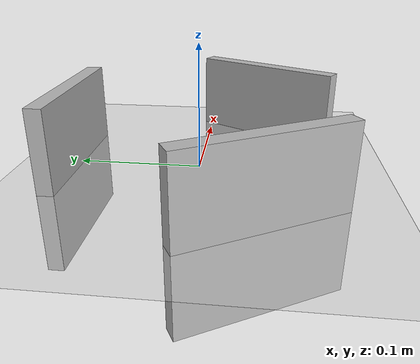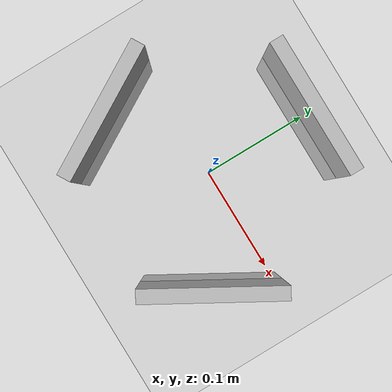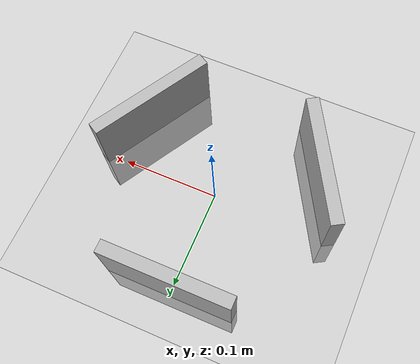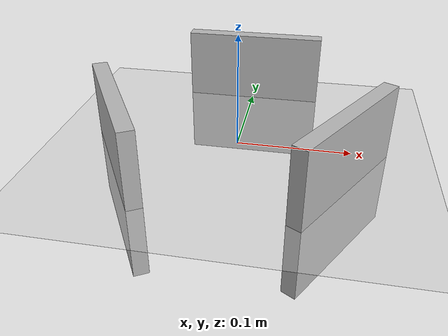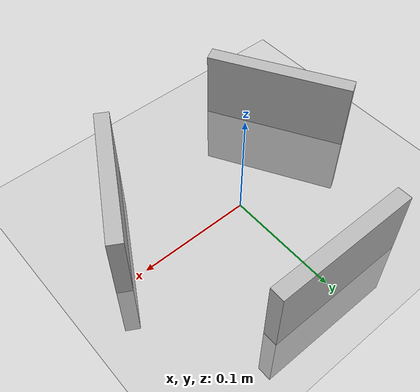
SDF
<?xml version="1.0" ?>

<sdf version="1.5">
	<world name="default">
		<!-- A global light source -->
		<include>
			<uri>model://sun</uri>
		</include>

		<!-- A ground plane -->
		<include>
			<uri>model://ground_plane</uri>
		</include>

        	<!-- aruco landmark 0 -->
		<include>
			<uri>model://aruco_marker_0</uri>
			<pose>-0.0912 -0.0526 0 0 0 3.666</pose>
		</include>

        	<!-- aruco landmark 2 -->
		<include>
			<uri>model://aruco_marker_2</uri>
			<pose>0.0912 -0.0526 0 0 0 5.760</pose>
		</include>

        	<!-- aruco landmark 3 -->
		<include>
			<uri>model://aruco_marker_3</uri>
			<pose>0 0.105 0 0 0 1.571</pose>
		</include>

	</world>
</sdf>

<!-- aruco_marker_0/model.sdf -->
<sdf version="1.5">
  <model name="aruco_marker_0">
    <static>true</static>
    <link name="base">
      <collision name="collision">
        <geometry>
          <box>
            <size>0.013125 0.13125 0.13125</size>
          </box>
        </geometry>
        <surface>
          <friction>
            <ode>
              <mu>100</mu>
              <mu2>50</mu2>
            </ode>
          </friction>
        </surface>
      </collision>

      <visual name="visual">
        <geometry>
          <box>
            <size>0.013125 0.13125 0.13125</size>
          </box>
        </geometry>
        <material>
          <script>
            <uri>model://aruco_marker_0/materials/scripts</uri>
            <uri>model://aruco_marker_0/materials/textures</uri>
            <name>aruco_marker_0/Diffuse</name>
          </script>
        </material>
      </visual>
    </link>

    <joint name="world_joint" type="fixed">
      <child>base</child>
      <parent>world</parent>
      <axis>
        <limit>
          <lower>0</lower>
          <upper>0</upper>
        </limit>
        <xyz>0 1 0</xyz>
        <dynamics>
          <damping>1.0</damping>
        </dynamics>
        <use_parent_model_frame>true</use_parent_model_frame>
      </axis>
      <physics>
        <ode>
          <cfm_damping>1</cfm_damping>
        </ode>
      </physics>
    </joint>
  </model>
</sdf>

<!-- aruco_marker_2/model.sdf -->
<sdf version="1.5">
  <model name="aruco_marker_2">
    <static>true</static>
    <link name="link">
      <collision name="collision">
        <geometry>
          <box>
            <size>0.013125 0.13125 0.13125</size>
          </box>
        </geometry>
        <surface>
          <friction>
            <ode>
              <mu>100</mu>
              <mu2>50</mu2>
            </ode>
          </friction>
        </surface>
      </collision>

      <visual name="visual">
        <geometry>
          <box>
            <size>0.013125 0.13125 0.13125</size>
          </box>
        </geometry>
        <material>
          <script>
            <uri>model://aruco_marker_2/materials/scripts</uri>
            <uri>model://aruco_marker_2/materials/textures</uri>
            <name>aruco_marker_2/Diffuse</name>
          </script>
        </material>
      </visual>
    </link>
  </model>
</sdf>

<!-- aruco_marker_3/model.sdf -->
<sdf version="1.5">
  <model name="aruco_marker_3">
    <static>true</static>
    <link name="link">
      <collision name="collision">
        <geometry>
          <box>
            <size>0.013125 0.13125 0.13125</size>
          </box>
        </geometry>
        <surface>
          <friction>
            <ode>
              <mu>100</mu>
              <mu2>50</mu2>
            </ode>
          </friction>
        </surface>
      </collision>

      <visual name="visual">
        <geometry>
          <box>
            <size>0.013125 0.13125 0.13125</size>
          </box>
        </geometry>
        <material>
          <script>
            <uri>model://aruco_marker_3/materials/scripts</uri>
            <uri>model://aruco_marker_3/materials/textures</uri>
            <name>aruco_marker_3/Diffuse</name>
          </script>
        </material>
      </visual>
    </link>
  </model>
</sdf>
